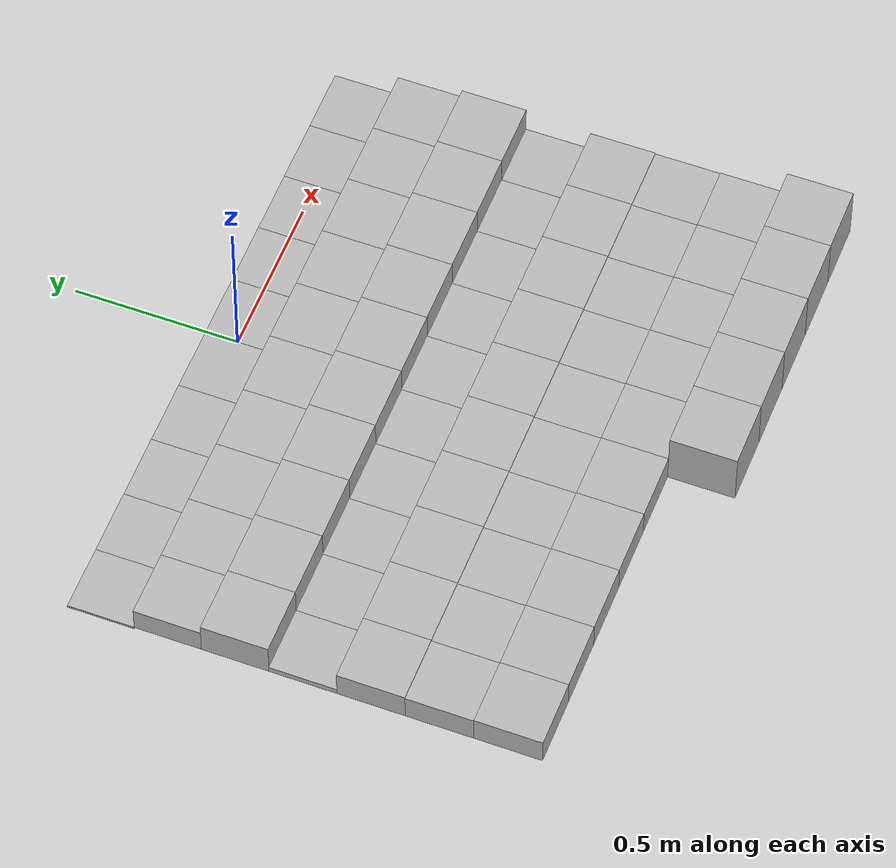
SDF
<sdf version="1.6">
 <model name="Terrain">
  <static>true</static>
  <link name="box_0_0">
   <pose>-0.9 0.0 -0.00376873124475 0 0 0</pose>
   <inertial>
    <mass>1.0</mass>
    <inertia><ixx>0.0</ixx><ixy>0.0</ixy><ixz>0.0</ixz><iyy>0.0</iyy><iyz>0.0</iyz><izz>0.0</izz></inertia>
   </inertial>
   <collision name="collision"><geometry><box><size>0.2 0.2 -0.0075374624895</size></box></geometry></collision>
   <visual name="visual"><geometry><box><size>0.2 0.2 -0.0075374624895</size></box></geometry></visual>
  </link>
  <link name="box_0_1">
   <pose>-0.7 0.0 -0.00376873124475 0 0 0</pose>
   <inertial>
    <mass>1.0</mass>
    <inertia><ixx>0.0</ixx><ixy>0.0</ixy><ixz>0.0</ixz><iyy>0.0</iyy><iyz>0.0</iyz><izz>0.0</izz></inertia>
   </inertial>
   <collision name="collision"><geometry><box><size>0.2 0.2 -0.0075374624895</size></box></geometry></collision>
   <visual name="visual"><geometry><box><size>0.2 0.2 -0.0075374624895</size></box></geometry></visual>
  </link>
  <link name="box_0_2">
   <pose>-0.5 0.0 -0.00376873124475 0 0 0</pose>
   <inertial>
    <mass>1.0</mass>
    <inertia><ixx>0.0</ixx><ixy>0.0</ixy><ixz>0.0</ixz><iyy>0.0</iyy><iyz>0.0</iyz><izz>0.0</izz></inertia>
   </inertial>
   <collision name="collision"><geometry><box><size>0.2 0.2 -0.0075374624895</size></box></geometry></collision>
   <visual name="visual"><geometry><box><size>0.2 0.2 -0.0075374624895</size></box></geometry></visual>
  </link>
  <link name="box_0_3">
   <pose>-0.3 0.0 -0.00376873124475 0 0 0</pose>
   <inertial>
    <mass>1.0</mass>
    <inertia><ixx>0.0</ixx><ixy>0.0</ixy><ixz>0.0</ixz><iyy>0.0</iyy><iyz>0.0</iyz><izz>0.0</izz></inertia>
   </inertial>
   <collision name="collision"><geometry><box><size>0.2 0.2 -0.0075374624895</size></box></geometry></collision>
   <visual name="visual"><geometry><box><size>0.2 0.2 -0.0075374624895</size></box></geometry></visual>
  </link>
  <link name="box_0_4">
   <pose>-0.1 0.0 -0.00376873124475 0 0 0</pose>
   <inertial>
    <mass>1.0</mass>
    <inertia><ixx>0.0</ixx><ixy>0.0</ixy><ixz>0.0</ixz><iyy>0.0</iyy><iyz>0.0</iyz><izz>0.0</izz></inertia>
   </inertial>
   <collision name="collision"><geometry><box><size>0.2 0.2 -0.0075374624895</size></box></geometry></collision>
   <visual name="visual"><geometry><box><size>0.2 0.2 -0.0075374624895</size></box></geometry></visual>
  </link>
  <link name="box_0_5">
   <pose>0.1 0.0 -0.00376873124475 0 0 0</pose>
   <inertial>
    <mass>1.0</mass>
    <inertia><ixx>0.0</ixx><ixy>0.0</ixy><ixz>0.0</ixz><iyy>0.0</iyy><iyz>0.0</iyz><izz>0.0</izz></inertia>
   </inertial>
   <collision name="collision"><geometry><box><size>0.2 0.2 -0.0075374624895</size></box></geometry></collision>
   <visual name="visual"><geometry><box><size>0.2 0.2 -0.0075374624895</size></box></geometry></visual>
  </link>
  <link name="box_0_6">
   <pose>0.3 0.0 -0.00376873124475 0 0 0</pose>
   <inertial>
    <mass>1.0</mass>
    <inertia><ixx>0.0</ixx><ixy>0.0</ixy><ixz>0.0</ixz><iyy>0.0</iyy><iyz>0.0</iyz><izz>0.0</izz></inertia>
   </inertial>
   <collision name="collision"><geometry><box><size>0.2 0.2 -0.0075374624895</size></box></geometry></collision>
   <visual name="visual"><geometry><box><size>0.2 0.2 -0.0075374624895</size></box></geometry></visual>
  </link>
  <link name="box_0_7">
   <pose>0.5 0.0 -0.00376873124475 0 0 0</pose>
   <inertial>
    <mass>1.0</mass>
    <inertia><ixx>0.0</ixx><ixy>0.0</ixy><ixz>0.0</ixz><iyy>0.0</iyy><iyz>0.0</iyz><izz>0.0</izz></inertia>
   </inertial>
   <collision name="collision"><geometry><box><size>0.2 0.2 -0.0075374624895</size></box></geometry></collision>
   <visual name="visual"><geometry><box><size>0.2 0.2 -0.0075374624895</size></box></geometry></visual>
  </link>
  <link name="box_0_8">
   <pose>0.7 0.0 -0.00376873124475 0 0 0</pose>
   <inertial>
    <mass>1.0</mass>
    <inertia><ixx>0.0</ixx><ixy>0.0</ixy><ixz>0.0</ixz><iyy>0.0</iyy><iyz>0.0</iyz><izz>0.0</izz></inertia>
   </inertial>
   <collision name="collision"><geometry><box><size>0.2 0.2 -0.0075374624895</size></box></geometry></collision>
   <visual name="visual"><geometry><box><size>0.2 0.2 -0.0075374624895</size></box></geometry></visual>
  </link>
  <link name="box_0_9">
   <pose>0.9 0.0 -0.00376873124475 0 0 0</pose>
   <inertial>
    <mass>1.0</mass>
    <inertia><ixx>0.0</ixx><ixy>0.0</ixy><ixz>0.0</ixz><iyy>0.0</iyy><iyz>0.0</iyz><izz>0.0</izz></inertia>
   </inertial>
   <collision name="collision"><geometry><box><size>0.2 0.2 -0.0075374624895</size></box></geometry></collision>
   <visual name="visual"><geometry><box><size>0.2 0.2 -0.0075374624895</size></box></geometry></visual>
  </link>
  <link name="box_1_0">
   <pose>-0.9 -0.2 0.040248962312 0 0 0</pose>
   <inertial>
    <mass>1.0</mass>
    <inertia><ixx>0.0</ixx><ixy>0.0</ixy><ixz>0.0</ixz><iyy>0.0</iyy><iyz>0.0</iyz><izz>0.0</izz></inertia>
   </inertial>
   <collision name="collision"><geometry><box><size>0.2 0.2 0.080497924624</size></box></geometry></collision>
   <visual name="visual"><geometry><box><size>0.2 0.2 0.080497924624</size></box></geometry></visual>
  </link>
  <link name="box_1_1">
   <pose>-0.7 -0.2 0.040248962312 0 0 0</pose>
   <inertial>
    <mass>1.0</mass>
    <inertia><ixx>0.0</ixx><ixy>0.0</ixy><ixz>0.0</ixz><iyy>0.0</iyy><iyz>0.0</iyz><izz>0.0</izz></inertia>
   </inertial>
   <collision name="collision"><geometry><box><size>0.2 0.2 0.080497924624</size></box></geometry></collision>
   <visual name="visual"><geometry><box><size>0.2 0.2 0.080497924624</size></box></geometry></visual>
  </link>
  <link name="box_1_2">
   <pose>-0.5 -0.2 0.040248962312 0 0 0</pose>
   <inertial>
    <mass>1.0</mass>
    <inertia><ixx>0.0</ixx><ixy>0.0</ixy><ixz>0.0</ixz><iyy>0.0</iyy><iyz>0.0</iyz><izz>0.0</izz></inertia>
   </inertial>
   <collision name="collision"><geometry><box><size>0.2 0.2 0.080497924624</size></box></geometry></collision>
   <visual name="visual"><geometry><box><size>0.2 0.2 0.080497924624</size></box></geometry></visual>
  </link>
  <link name="box_1_3">
   <pose>-0.3 -0.2 0.040248962312 0 0 0</pose>
   <inertial>
    <mass>1.0</mass>
    <inertia><ixx>0.0</ixx><ixy>0.0</ixy><ixz>0.0</ixz><iyy>0.0</iyy><iyz>0.0</iyz><izz>0.0</izz></inertia>
   </inertial>
   <collision name="collision"><geometry><box><size>0.2 0.2 0.080497924624</size></box></geometry></collision>
   <visual name="visual"><geometry><box><size>0.2 0.2 0.080497924624</size></box></geometry></visual>
  </link>
  <link name="box_1_4">
   <pose>-0.1 -0.2 0.040248962312 0 0 0</pose>
   <inertial>
    <mass>1.0</mass>
    <inertia><ixx>0.0</ixx><ixy>0.0</ixy><ixz>0.0</ixz><iyy>0.0</iyy><iyz>0.0</iyz><izz>0.0</izz></inertia>
   </inertial>
   <collision name="collision"><geometry><box><size>0.2 0.2 0.080497924624</size></box></geometry></collision>
   <visual name="visual"><geometry><box><size>0.2 0.2 0.080497924624</size></box></geometry></visual>
  </link>
  <link name="box_1_5">
   <pose>0.1 -0.2 0.040248962312 0 0 0</pose>
   <inertial>
    <mass>1.0</mass>
    <inertia><ixx>0.0</ixx><ixy>0.0</ixy><ixz>0.0</ixz><iyy>0.0</iyy><iyz>0.0</iyz><izz>0.0</izz></inertia>
   </inertial>
   <collision name="collision"><geometry><box><size>0.2 0.2 0.080497924624</size></box></geometry></collision>
   <visual name="visual"><geometry><box><size>0.2 0.2 0.080497924624</size></box></geometry></visual>
  </link>
  <link name="box_1_6">
   <pose>0.3 -0.2 0.040248962312 0 0 0</pose>
   <inertial>
    <mass>1.0</mass>
    <inertia><ixx>0.0</ixx><ixy>0.0</ixy><ixz>0.0</ixz><iyy>0.0</iyy><iyz>0.0</iyz><izz>0.0</izz></inertia>
   </inertial>
   <collision name="collision"><geometry><box><size>0.2 0.2 0.080497924624</size></box></geometry></collision>
   <visual name="visual"><geometry><box><size>0.2 0.2 0.080497924624</size></box></geometry></visual>
  </link>
  <link name="box_1_7">
   <pose>0.5 -0.2 0.040248962312 0 0 0</pose>
   <inertial>
    <mass>1.0</mass>
    <inertia><ixx>0.0</ixx><ixy>0.0</ixy><ixz>0.0</ixz><iyy>0.0</iyy><iyz>0.0</iyz><izz>0.0</izz></inertia>
   </inertial>
   <collision name="collision"><geometry><box><size>0.2 0.2 0.080497924624</size></box></geometry></collision>
   <visual name="visual"><geometry><box><size>0.2 0.2 0.080497924624</size></box></geometry></visual>
  </link>
  <link name="box_1_8">
   <pose>0.7 -0.2 0.040248962312 0 0 0</pose>
   <inertial>
    <mass>1.0</mass>
    <inertia><ixx>0.0</ixx><ixy>0.0</ixy><ixz>0.0</ixz><iyy>0.0</iyy><iyz>0.0</iyz><izz>0.0</izz></inertia>
   </inertial>
   <collision name="collision"><geometry><box><size>0.2 0.2 0.080497924624</size></box></geometry></collision>
   <visual name="visual"><geometry><box><size>0.2 0.2 0.080497924624</size></box></geometry></visual>
  </link>
  <link name="box_1_9">
   <pose>0.9 -0.2 0.040248962312 0 0 0</pose>
   <inertial>
    <mass>1.0</mass>
    <inertia><ixx>0.0</ixx><ixy>0.0</ixy><ixz>0.0</ixz><iyy>0.0</iyy><iyz>0.0</iyz><izz>0.0</izz></inertia>
   </inertial>
   <collision name="collision"><geometry><box><size>0.2 0.2 0.080497924624</size></box></geometry></collision>
   <visual name="visual"><geometry><box><size>0.2 0.2 0.080497924624</size></box></geometry></visual>
  </link>
  <link name="box_2_0">
   <pose>-0.9 -0.4 0.0546225197185 0 0 0</pose>
   <inertial>
    <mass>1.0</mass>
    <inertia><ixx>0.0</ixx><ixy>0.0</ixy><ixz>0.0</ixz><iyy>0.0</iyy><iyz>0.0</iyz><izz>0.0</izz></inertia>
   </inertial>
   <collision name="collision"><geometry><box><size>0.2 0.2 0.109245039437</size></box></geometry></collision>
   <visual name="visual"><geometry><box><size>0.2 0.2 0.109245039437</size></box></geometry></visual>
  </link>
  <link name="box_2_1">
   <pose>-0.7 -0.4 0.0546225197185 0 0 0</pose>
   <inertial>
    <mass>1.0</mass>
    <inertia><ixx>0.0</ixx><ixy>0.0</ixy><ixz>0.0</ixz><iyy>0.0</iyy><iyz>0.0</iyz><izz>0.0</izz></inertia>
   </inertial>
   <collision name="collision"><geometry><box><size>0.2 0.2 0.109245039437</size></box></geometry></collision>
   <visual name="visual"><geometry><box><size>0.2 0.2 0.109245039437</size></box></geometry></visual>
  </link>
  <link name="box_2_2">
   <pose>-0.5 -0.4 0.0546225197185 0 0 0</pose>
   <inertial>
    <mass>1.0</mass>
    <inertia><ixx>0.0</ixx><ixy>0.0</ixy><ixz>0.0</ixz><iyy>0.0</iyy><iyz>0.0</iyz><izz>0.0</izz></inertia>
   </inertial>
   <collision name="collision"><geometry><box><size>0.2 0.2 0.109245039437</size></box></geometry></collision>
   <visual name="visual"><geometry><box><size>0.2 0.2 0.109245039437</size></box></geometry></visual>
  </link>
  <link name="box_2_3">
   <pose>-0.3 -0.4 0.0546225197185 0 0 0</pose>
   <inertial>
    <mass>1.0</mass>
    <inertia><ixx>0.0</ixx><ixy>0.0</ixy><ixz>0.0</ixz><iyy>0.0</iyy><iyz>0.0</iyz><izz>0.0</izz></inertia>
   </inertial>
   <collision name="collision"><geometry><box><size>0.2 0.2 0.109245039437</size></box></geometry></collision>
   <visual name="visual"><geometry><box><size>0.2 0.2 0.109245039437</size></box></geometry></visual>
  </link>
  <link name="box_2_4">
   <pose>-0.1 -0.4 0.0546225197185 0 0 0</pose>
   <inertial>
    <mass>1.0</mass>
    <inertia><ixx>0.0</ixx><ixy>0.0</ixy><ixz>0.0</ixz><iyy>0.0</iyy><iyz>0.0</iyz><izz>0.0</izz></inertia>
   </inertial>
   <collision name="collision"><geometry><box><size>0.2 0.2 0.109245039437</size></box></geometry></collision>
   <visual name="visual"><geometry><box><size>0.2 0.2 0.109245039437</size></box></geometry></visual>
  </link>
  <link name="box_2_5">
   <pose>0.1 -0.4 0.0546225197185 0 0 0</pose>
   <inertial>
    <mass>1.0</mass>
    <inertia><ixx>0.0</ixx><ixy>0.0</ixy><ixz>0.0</ixz><iyy>0.0</iyy><iyz>0.0</iyz><izz>0.0</izz></inertia>
   </inertial>
   <collision name="collision"><geometry><box><size>0.2 0.2 0.109245039437</size></box></geometry></collision>
   <visual name="visual"><geometry><box><size>0.2 0.2 0.109245039437</size></box></geometry></visual>
  </link>
  <link name="box_2_6">
   <pose>0.3 -0.4 0.0546225197185 0 0 0</pose>
   <inertial>
    <mass>1.0</mass>
    <inertia><ixx>0.0</ixx><ixy>0.0</ixy><ixz>0.0</ixz><iyy>0.0</iyy><iyz>0.0</iyz><izz>0.0</izz></inertia>
   </inertial>
   <collision name="collision"><geometry><box><size>0.2 0.2 0.109245039437</size></box></geometry></collision>
   <visual name="visual"><geometry><box><size>0.2 0.2 0.109245039437</size></box></geometry></visual>
  </link>
  <link name="box_2_7">
   <pose>0.5 -0.4 0.0546225197185 0 0 0</pose>
   <inertial>
    <mass>1.0</mass>
    <inertia><ixx>0.0</ixx><ixy>0.0</ixy><ixz>0.0</ixz><iyy>0.0</iyy><iyz>0.0</iyz><izz>0.0</izz></inertia>
   </inertial>
   <collision name="collision"><geometry><box><size>0.2 0.2 0.109245039437</size></box></geometry></collision>
   <visual name="visual"><geometry><box><size>0.2 0.2 0.109245039437</size></box></geometry></visual>
  </link>
  <link name="box_2_8">
   <pose>0.7 -0.4 0.0546225197185 0 0 0</pose>
   <inertial>
    <mass>1.0</mass>
    <inertia><ixx>0.0</ixx><ixy>0.0</ixy><ixz>0.0</ixz><iyy>0.0</iyy><iyz>0.0</iyz><izz>0.0</izz></inertia>
   </inertial>
   <collision name="collision"><geometry><box><size>0.2 0.2 0.109245039437</size></box></geometry></collision>
   <visual name="visual"><geometry><box><size>0.2 0.2 0.109245039437</size></box></geometry></visual>
  </link>
  <link name="box_2_9">
   <pose>0.9 -0.4 0.0546225197185 0 0 0</pose>
   <inertial>
    <mass>1.0</mass>
    <inertia><ixx>0.0</ixx><ixy>0.0</ixy><ixz>0.0</ixz><iyy>0.0</iyy><iyz>0.0</iyz><izz>0.0</izz></inertia>
   </inertial>
   <collision name="collision"><geometry><box><size>0.2 0.2 0.109245039437</size></box></geometry></collision>
   <visual name="visual"><geometry><box><size>0.2 0.2 0.109245039437</size></box></geometry></visual>
  </link>
  <link name="box_3_0">
   <pose>-0.9 -0.6 0.00967694955754 0 0 0</pose>
   <inertial>
    <mass>1.0</mass>
    <inertia><ixx>0.0</ixx><ixy>0.0</ixy><ixz>0.0</ixz><iyy>0.0</iyy><iyz>0.0</iyz><izz>0.0</izz></inertia>
   </inertial>
   <collision name="collision"><geometry><box><size>0.2 0.2 0.0193538991151</size></box></geometry></collision>
   <visual name="visual"><geometry><box><size>0.2 0.2 0.0193538991151</size></box></geometry></visual>
  </link>
  <link name="box_3_1">
   <pose>-0.7 -0.6 0.00967694955754 0 0 0</pose>
   <inertial>
    <mass>1.0</mass>
    <inertia><ixx>0.0</ixx><ixy>0.0</ixy><ixz>0.0</ixz><iyy>0.0</iyy><iyz>0.0</iyz><izz>0.0</izz></inertia>
   </inertial>
   <collision name="collision"><geometry><box><size>0.2 0.2 0.0193538991151</size></box></geometry></collision>
   <visual name="visual"><geometry><box><size>0.2 0.2 0.0193538991151</size></box></geometry></visual>
  </link>
  <link name="box_3_2">
   <pose>-0.5 -0.6 0.00967694955754 0 0 0</pose>
   <inertial>
    <mass>1.0</mass>
    <inertia><ixx>0.0</ixx><ixy>0.0</ixy><ixz>0.0</ixz><iyy>0.0</iyy><iyz>0.0</iyz><izz>0.0</izz></inertia>
   </inertial>
   <collision name="collision"><geometry><box><size>0.2 0.2 0.0193538991151</size></box></geometry></collision>
   <visual name="visual"><geometry><box><size>0.2 0.2 0.0193538991151</size></box></geometry></visual>
  </link>
  <link name="box_3_3">
   <pose>-0.3 -0.6 0.00967694955754 0 0 0</pose>
   <inertial>
    <mass>1.0</mass>
    <inertia><ixx>0.0</ixx><ixy>0.0</ixy><ixz>0.0</ixz><iyy>0.0</iyy><iyz>0.0</iyz><izz>0.0</izz></inertia>
   </inertial>
   <collision name="collision"><geometry><box><size>0.2 0.2 0.0193538991151</size></box></geometry></collision>
   <visual name="visual"><geometry><box><size>0.2 0.2 0.0193538991151</size></box></geometry></visual>
  </link>
  <link name="box_3_4">
   <pose>-0.1 -0.6 0.00967694955754 0 0 0</pose>
   <inertial>
    <mass>1.0</mass>
    <inertia><ixx>0.0</ixx><ixy>0.0</ixy><ixz>0.0</ixz><iyy>0.0</iyy><iyz>0.0</iyz><izz>0.0</izz></inertia>
   </inertial>
   <collision name="collision"><geometry><box><size>0.2 0.2 0.0193538991151</size></box></geometry></collision>
   <visual name="visual"><geometry><box><size>0.2 0.2 0.0193538991151</size></box></geometry></visual>
  </link>
  <link name="box_3_5">
   <pose>0.1 -0.6 0.00967694955754 0 0 0</pose>
   <inertial>
    <mass>1.0</mass>
    <inertia><ixx>0.0</ixx><ixy>0.0</ixy><ixz>0.0</ixz><iyy>0.0</iyy><iyz>0.0</iyz><izz>0.0</izz></inertia>
   </inertial>
   <collision name="collision"><geometry><box><size>0.2 0.2 0.0193538991151</size></box></geometry></collision>
   <visual name="visual"><geometry><box><size>0.2 0.2 0.0193538991151</size></box></geometry></visual>
  </link>
  <link name="box_3_6">
   <pose>0.3 -0.6 0.00967694955754 0 0 0</pose>
   <inertial>
    <mass>1.0</mass>
    <inertia><ixx>0.0</ixx><ixy>0.0</ixy><ixz>0.0</ixz><iyy>0.0</iyy><iyz>0.0</iyz><izz>0.0</izz></inertia>
   </inertial>
   <collision name="collision"><geometry><box><size>0.2 0.2 0.0193538991151</size></box></geometry></collision>
   <visual name="visual"><geometry><box><size>0.2 0.2 0.0193538991151</size></box></geometry></visual>
  </link>
  <link name="box_3_7">
   <pose>0.5 -0.6 0.00967694955754 0 0 0</pose>
   <inertial>
    <mass>1.0</mass>
    <inertia><ixx>0.0</ixx><ixy>0.0</ixy><ixz>0.0</ixz><iyy>0.0</iyy><iyz>0.0</iyz><izz>0.0</izz></inertia>
   </inertial>
   <collision name="collision"><geometry><box><size>0.2 0.2 0.0193538991151</size></box></geometry></collision>
   <visual name="visual"><geometry><box><size>0.2 0.2 0.0193538991151</size></box></geometry></visual>
  </link>
  <link name="box_3_8">
   <pose>0.7 -0.6 0.00967694955754 0 0 0</pose>
   <inertial>
    <mass>1.0</mass>
    <inertia><ixx>0.0</ixx><ixy>0.0</ixy><ixz>0.0</ixz><iyy>0.0</iyy><iyz>0.0</iyz><izz>0.0</izz></inertia>
   </inertial>
   <collision name="collision"><geometry><box><size>0.2 0.2 0.0193538991151</size></box></geometry></collision>
   <visual name="visual"><geometry><box><size>0.2 0.2 0.0193538991151</size></box></geometry></visual>
  </link>
  <link name="box_3_9">
   <pose>0.9 -0.6 0.00967694955754 0 0 0</pose>
   <inertial>
    <mass>1.0</mass>
    <inertia><ixx>0.0</ixx><ixy>0.0</ixy><ixz>0.0</ixz><iyy>0.0</iyy><iyz>0.0</iyz><izz>0.0</izz></inertia>
   </inertial>
   <collision name="collision"><geometry><box><size>0.2 0.2 0.0193538991151</size></box></geometry></collision>
   <visual name="visual"><geometry><box><size>0.2 0.2 0.0193538991151</size></box></geometry></visual>
  </link>
  <link name="box_4_0">
   <pose>-0.9 -0.8 0.0453928299015 0 0 0</pose>
   <inertial>
    <mass>1.0</mass>
    <inertia><ixx>0.0</ixx><ixy>0.0</ixy><ixz>0.0</ixz><iyy>0.0</iyy><iyz>0.0</iyz><izz>0.0</izz></inertia>
   </inertial>
   <collision name="collision"><geometry><box><size>0.2 0.2 0.0907856598031</size></box></geometry></collision>
   <visual name="visual"><geometry><box><size>0.2 0.2 0.0907856598031</size></box></geometry></visual>
  </link>
  <link name="box_4_1">
   <pose>-0.7 -0.8 0.0453928299015 0 0 0</pose>
   <inertial>
    <mass>1.0</mass>
    <inertia><ixx>0.0</ixx><ixy>0.0</ixy><ixz>0.0</ixz><iyy>0.0</iyy><iyz>0.0</iyz><izz>0.0</izz></inertia>
   </inertial>
   <collision name="collision"><geometry><box><size>0.2 0.2 0.0907856598031</size></box></geometry></collision>
   <visual name="visual"><geometry><box><size>0.2 0.2 0.0907856598031</size></box></geometry></visual>
  </link>
  <link name="box_4_2">
   <pose>-0.5 -0.8 0.0453928299015 0 0 0</pose>
   <inertial>
    <mass>1.0</mass>
    <inertia><ixx>0.0</ixx><ixy>0.0</ixy><ixz>0.0</ixz><iyy>0.0</iyy><iyz>0.0</iyz><izz>0.0</izz></inertia>
   </inertial>
   <collision name="collision"><geometry><box><size>0.2 0.2 0.0907856598031</size></box></geometry></collision>
   <visual name="visual"><geometry><box><size>0.2 0.2 0.0907856598031</size></box></geometry></visual>
  </link>
  <link name="box_4_3">
   <pose>-0.3 -0.8 0.0453928299015 0 0 0</pose>
   <inertial>
    <mass>1.0</mass>
    <inertia><ixx>0.0</ixx><ixy>0.0</ixy><ixz>0.0</ixz><iyy>0.0</iyy><iyz>0.0</iyz><izz>0.0</izz></inertia>
   </inertial>
   <collision name="collision"><geometry><box><size>0.2 0.2 0.0907856598031</size></box></geometry></collision>
   <visual name="visual"><geometry><box><size>0.2 0.2 0.0907856598031</size></box></geometry></visual>
  </link>
  <link name="box_4_4">
   <pose>-0.1 -0.8 0.0453928299015 0 0 0</pose>
   <inertial>
    <mass>1.0</mass>
    <inertia><ixx>0.0</ixx><ixy>0.0</ixy><ixz>0.0</ixz><iyy>0.0</iyy><iyz>0.0</iyz><izz>0.0</izz></inertia>
   </inertial>
   <collision name="collision"><geometry><box><size>0.2 0.2 0.0907856598031</size></box></geometry></collision>
   <visual name="visual"><geometry><box><size>0.2 0.2 0.0907856598031</size></box></geometry></visual>
  </link>
  <link name="box_4_5">
   <pose>0.1 -0.8 0.0453928299015 0 0 0</pose>
   <inertial>
    <mass>1.0</mass>
    <inertia><ixx>0.0</ixx><ixy>0.0</ixy><ixz>0.0</ixz><iyy>0.0</iyy><iyz>0.0</iyz><izz>0.0</izz></inertia>
   </inertial>
   <collision name="collision"><geometry><box><size>0.2 0.2 0.0907856598031</size></box></geometry></collision>
   <visual name="visual"><geometry><box><size>0.2 0.2 0.0907856598031</size></box></geometry></visual>
  </link>
  <link name="box_4_6">
   <pose>0.3 -0.8 0.0453928299015 0 0 0</pose>
   <inertial>
    <mass>1.0</mass>
    <inertia><ixx>0.0</ixx><ixy>0.0</ixy><ixz>0.0</ixz><iyy>0.0</iyy><iyz>0.0</iyz><izz>0.0</izz></inertia>
   </inertial>
   <collision name="collision"><geometry><box><size>0.2 0.2 0.0907856598031</size></box></geometry></collision>
   <visual name="visual"><geometry><box><size>0.2 0.2 0.0907856598031</size></box></geometry></visual>
  </link>
  <link name="box_4_7">
   <pose>0.5 -0.8 0.0453928299015 0 0 0</pose>
   <inertial>
    <mass>1.0</mass>
    <inertia><ixx>0.0</ixx><ixy>0.0</ixy><ixz>0.0</ixz><iyy>0.0</iyy><iyz>0.0</iyz><izz>0.0</izz></inertia>
   </inertial>
   <collision name="collision"><geometry><box><size>0.2 0.2 0.0907856598031</size></box></geometry></collision>
   <visual name="visual"><geometry><box><size>0.2 0.2 0.0907856598031</size></box></geometry></visual>
  </link>
  <link name="box_4_8">
   <pose>0.7 -0.8 0.0453928299015 0 0 0</pose>
   <inertial>
    <mass>1.0</mass>
    <inertia><ixx>0.0</ixx><ixy>0.0</ixy><ixz>0.0</ixz><iyy>0.0</iyy><iyz>0.0</iyz><izz>0.0</izz></inertia>
   </inertial>
   <collision name="collision"><geometry><box><size>0.2 0.2 0.0907856598031</size></box></geometry></collision>
   <visual name="visual"><geometry><box><size>0.2 0.2 0.0907856598031</size></box></geometry></visual>
  </link>
  <link name="box_4_9">
   <pose>0.9 -0.8 0.0453928299015 0 0 0</pose>
   <inertial>
    <mass>1.0</mass>
    <inertia><ixx>0.0</ixx><ixy>0.0</ixy><ixz>0.0</ixz><iyy>0.0</iyy><iyz>0.0</iyz><izz>0.0</izz></inertia>
   </inertial>
   <collision name="collision"><geometry><box><size>0.2 0.2 0.0907856598031</size></box></geometry></collision>
   <visual name="visual"><geometry><box><size>0.2 0.2 0.0907856598031</size></box></geometry></visual>
  </link>
  <link name="box_5_0">
   <pose>-0.9 -1.0 0.0435243789429 0 0 0</pose>
   <inertial>
    <mass>1.0</mass>
    <inertia><ixx>0.0</ixx><ixy>0.0</ixy><ixz>0.0</ixz><iyy>0.0</iyy><iyz>0.0</iyz><izz>0.0</izz></inertia>
   </inertial>
   <collision name="collision"><geometry><box><size>0.2 0.2 0.0870487578859</size></box></geometry></collision>
   <visual name="visual"><geometry><box><size>0.2 0.2 0.0870487578859</size></box></geometry></visual>
  </link>
  <link name="box_5_1">
   <pose>-0.7 -1.0 0.0435243789429 0 0 0</pose>
   <inertial>
    <mass>1.0</mass>
    <inertia><ixx>0.0</ixx><ixy>0.0</ixy><ixz>0.0</ixz><iyy>0.0</iyy><iyz>0.0</iyz><izz>0.0</izz></inertia>
   </inertial>
   <collision name="collision"><geometry><box><size>0.2 0.2 0.0870487578859</size></box></geometry></collision>
   <visual name="visual"><geometry><box><size>0.2 0.2 0.0870487578859</size></box></geometry></visual>
  </link>
  <link name="box_5_2">
   <pose>-0.5 -1.0 0.0435243789429 0 0 0</pose>
   <inertial>
    <mass>1.0</mass>
    <inertia><ixx>0.0</ixx><ixy>0.0</ixy><ixz>0.0</ixz><iyy>0.0</iyy><iyz>0.0</iyz><izz>0.0</izz></inertia>
   </inertial>
   <collision name="collision"><geometry><box><size>0.2 0.2 0.0870487578859</size></box></geometry></collision>
   <visual name="visual"><geometry><box><size>0.2 0.2 0.0870487578859</size></box></geometry></visual>
  </link>
  <link name="box_5_3">
   <pose>-0.3 -1.0 0.0435243789429 0 0 0</pose>
   <inertial>
    <mass>1.0</mass>
    <inertia><ixx>0.0</ixx><ixy>0.0</ixy><ixz>0.0</ixz><iyy>0.0</iyy><iyz>0.0</iyz><izz>0.0</izz></inertia>
   </inertial>
   <collision name="collision"><geometry><box><size>0.2 0.2 0.0870487578859</size></box></geometry></collision>
   <visual name="visual"><geometry><box><size>0.2 0.2 0.0870487578859</size></box></geometry></visual>
  </link>
  <link name="box_5_4">
   <pose>-0.1 -1.0 0.0435243789429 0 0 0</pose>
   <inertial>
    <mass>1.0</mass>
    <inertia><ixx>0.0</ixx><ixy>0.0</ixy><ixz>0.0</ixz><iyy>0.0</iyy><iyz>0.0</iyz><izz>0.0</izz></inertia>
   </inertial>
   <collision name="collision"><geometry><box><size>0.2 0.2 0.0870487578859</size></box></geometry></collision>
   <visual name="visual"><geometry><box><size>0.2 0.2 0.0870487578859</size></box></geometry></visual>
  </link>
  <link name="box_5_5">
   <pose>0.1 -1.0 0.0435243789429 0 0 0</pose>
   <inertial>
    <mass>1.0</mass>
    <inertia><ixx>0.0</ixx><ixy>0.0</ixy><ixz>0.0</ixz><iyy>0.0</iyy><iyz>0.0</iyz><izz>0.0</izz></inertia>
   </inertial>
   <collision name="collision"><geometry><box><size>0.2 0.2 0.0870487578859</size></box></geometry></collision>
   <visual name="visual"><geometry><box><size>0.2 0.2 0.0870487578859</size></box></geometry></visual>
  </link>
  <link name="box_5_6">
   <pose>0.3 -1.0 0.0435243789429 0 0 0</pose>
   <inertial>
    <mass>1.0</mass>
    <inertia><ixx>0.0</ixx><ixy>0.0</ixy><ixz>0.0</ixz><iyy>0.0</iyy><iyz>0.0</iyz><izz>0.0</izz></inertia>
   </inertial>
   <collision name="collision"><geometry><box><size>0.2 0.2 0.0870487578859</size></box></geometry></collision>
   <visual name="visual"><geometry><box><size>0.2 0.2 0.0870487578859</size></box></geometry></visual>
  </link>
  <link name="box_5_7">
   <pose>0.5 -1.0 0.0435243789429 0 0 0</pose>
   <inertial>
    <mass>1.0</mass>
    <inertia><ixx>0.0</ixx><ixy>0.0</ixy><ixz>0.0</ixz><iyy>0.0</iyy><iyz>0.0</iyz><izz>0.0</izz></inertia>
   </inertial>
   <collision name="collision"><geometry><box><size>0.2 0.2 0.0870487578859</size></box></geometry></collision>
   <visual name="visual"><geometry><box><size>0.2 0.2 0.0870487578859</size></box></geometry></visual>
  </link>
  <link name="box_5_8">
   <pose>0.7 -1.0 0.0435243789429 0 0 0</pose>
   <inertial>
    <mass>1.0</mass>
    <inertia><ixx>0.0</ixx><ixy>0.0</ixy><ixz>0.0</ixz><iyy>0.0</iyy><iyz>0.0</iyz><izz>0.0</izz></inertia>
   </inertial>
   <collision name="collision"><geometry><box><size>0.2 0.2 0.0870487578859</size></box></geometry></collision>
   <visual name="visual"><geometry><box><size>0.2 0.2 0.0870487578859</size></box></geometry></visual>
  </link>
  <link name="box_5_9">
   <pose>0.9 -1.0 0.0435243789429 0 0 0</pose>
   <inertial>
    <mass>1.0</mass>
    <inertia><ixx>0.0</ixx><ixy>0.0</ixy><ixz>0.0</ixz><iyy>0.0</iyy><iyz>0.0</iyz><izz>0.0</izz></inertia>
   </inertial>
   <collision name="collision"><geometry><box><size>0.2 0.2 0.0870487578859</size></box></geometry></collision>
   <visual name="visual"><geometry><box><size>0.2 0.2 0.0870487578859</size></box></geometry></visual>
  </link>
  <link name="box_6_0">
   <pose>-0.9 -1.2 0.0447203483397 0 0 0</pose>
   <inertial>
    <mass>1.0</mass>
    <inertia><ixx>0.0</ixx><ixy>0.0</ixy><ixz>0.0</ixz><iyy>0.0</iyy><iyz>0.0</iyz><izz>0.0</izz></inertia>
   </inertial>
   <collision name="collision"><geometry><box><size>0.2 0.2 0.0894406966794</size></box></geometry></collision>
   <visual name="visual"><geometry><box><size>0.2 0.2 0.0894406966794</size></box></geometry></visual>
  </link>
  <link name="box_6_1">
   <pose>-0.7 -1.2 0.0447203483397 0 0 0</pose>
   <inertial>
    <mass>1.0</mass>
    <inertia><ixx>0.0</ixx><ixy>0.0</ixy><ixz>0.0</ixz><iyy>0.0</iyy><iyz>0.0</iyz><izz>0.0</izz></inertia>
   </inertial>
   <collision name="collision"><geometry><box><size>0.2 0.2 0.0894406966794</size></box></geometry></collision>
   <visual name="visual"><geometry><box><size>0.2 0.2 0.0894406966794</size></box></geometry></visual>
  </link>
  <link name="box_6_2">
   <pose>-0.5 -1.2 0.0447203483397 0 0 0</pose>
   <inertial>
    <mass>1.0</mass>
    <inertia><ixx>0.0</ixx><ixy>0.0</ixy><ixz>0.0</ixz><iyy>0.0</iyy><iyz>0.0</iyz><izz>0.0</izz></inertia>
   </inertial>
   <collision name="collision"><geometry><box><size>0.2 0.2 0.0894406966794</size></box></geometry></collision>
   <visual name="visual"><geometry><box><size>0.2 0.2 0.0894406966794</size></box></geometry></visual>
  </link>
  <link name="box_6_3">
   <pose>-0.3 -1.2 0.0447203483397 0 0 0</pose>
   <inertial>
    <mass>1.0</mass>
    <inertia><ixx>0.0</ixx><ixy>0.0</ixy><ixz>0.0</ixz><iyy>0.0</iyy><iyz>0.0</iyz><izz>0.0</izz></inertia>
   </inertial>
   <collision name="collision"><geometry><box><size>0.2 0.2 0.0894406966794</size></box></geometry></collision>
   <visual name="visual"><geometry><box><size>0.2 0.2 0.0894406966794</size></box></geometry></visual>
  </link>
  <link name="box_6_4">
   <pose>-0.1 -1.2 0.0447203483397 0 0 0</pose>
   <inertial>
    <mass>1.0</mass>
    <inertia><ixx>0.0</ixx><ixy>0.0</ixy><ixz>0.0</ixz><iyy>0.0</iyy><iyz>0.0</iyz><izz>0.0</izz></inertia>
   </inertial>
   <collision name="collision"><geometry><box><size>0.2 0.2 0.0894406966794</size></box></geometry></collision>
   <visual name="visual"><geometry><box><size>0.2 0.2 0.0894406966794</size></box></geometry></visual>
  </link>
  <link name="box_6_5">
   <pose>0.1 -1.2 0.0447203483397 0 0 0</pose>
   <inertial>
    <mass>1.0</mass>
    <inertia><ixx>0.0</ixx><ixy>0.0</ixy><ixz>0.0</ixz><iyy>0.0</iyy><iyz>0.0</iyz><izz>0.0</izz></inertia>
   </inertial>
   <collision name="collision"><geometry><box><size>0.2 0.2 0.0894406966794</size></box></geometry></collision>
   <visual name="visual"><geometry><box><size>0.2 0.2 0.0894406966794</size></box></geometry></visual>
  </link>
  <link name="box_6_6">
   <pose>0.3 -1.2 0.0447203483397 0 0 0</pose>
   <inertial>
    <mass>1.0</mass>
    <inertia><ixx>0.0</ixx><ixy>0.0</ixy><ixz>0.0</ixz><iyy>0.0</iyy><iyz>0.0</iyz><izz>0.0</izz></inertia>
   </inertial>
   <collision name="collision"><geometry><box><size>0.2 0.2 0.0894406966794</size></box></geometry></collision>
   <visual name="visual"><geometry><box><size>0.2 0.2 0.0894406966794</size></box></geometry></visual>
  </link>
  <link name="box_6_7">
   <pose>0.5 -1.2 0.0447203483397 0 0 0</pose>
   <inertial>
    <mass>1.0</mass>
    <inertia><ixx>0.0</ixx><ixy>0.0</ixy><ixz>0.0</ixz><iyy>0.0</iyy><iyz>0.0</iyz><izz>0.0</izz></inertia>
   </inertial>
   <collision name="collision"><geometry><box><size>0.2 0.2 0.0894406966794</size></box></geometry></collision>
   <visual name="visual"><geometry><box><size>0.2 0.2 0.0894406966794</size></box></geometry></visual>
  </link>
  <link name="box_6_8">
   <pose>0.7 -1.2 0.0447203483397 0 0 0</pose>
   <inertial>
    <mass>1.0</mass>
    <inertia><ixx>0.0</ixx><ixy>0.0</ixy><ixz>0.0</ixz><iyy>0.0</iyy><iyz>0.0</iyz><izz>0.0</izz></inertia>
   </inertial>
   <collision name="collision"><geometry><box><size>0.2 0.2 0.0894406966794</size></box></geometry></collision>
   <visual name="visual"><geometry><box><size>0.2 0.2 0.0894406966794</size></box></geometry></visual>
  </link>
  <link name="box_6_9">
   <pose>0.9 -1.2 0.0447203483397 0 0 0</pose>
   <inertial>
    <mass>1.0</mass>
    <inertia><ixx>0.0</ixx><ixy>0.0</ixy><ixz>0.0</ixz><iyy>0.0</iyy><iyz>0.0</iyz><izz>0.0</izz></inertia>
   </inertial>
   <collision name="collision"><geometry><box><size>0.2 0.2 0.0894406966794</size></box></geometry></collision>
   <visual name="visual"><geometry><box><size>0.2 0.2 0.0894406966794</size></box></geometry></visual>
  </link>
  <link name="box_7_5">
   <pose>0.1 -1.4 0.0894675590558 0 0 0</pose>
   <inertial>
    <mass>1.0</mass>
    <inertia><ixx>0.0</ixx><ixy>0.0</ixy><ixz>0.0</ixz><iyy>0.0</iyy><iyz>0.0</iyz><izz>0.0</izz></inertia>
   </inertial>
   <collision name="collision"><geometry><box><size>0.2 0.2 0.178935118112</size></box></geometry></collision>
   <visual name="visual"><geometry><box><size>0.2 0.2 0.178935118112</size></box></geometry></visual>
  </link>
  <link name="box_7_6">
   <pose>0.3 -1.4 0.0894675590558 0 0 0</pose>
   <inertial>
    <mass>1.0</mass>
    <inertia><ixx>0.0</ixx><ixy>0.0</ixy><ixz>0.0</ixz><iyy>0.0</iyy><iyz>0.0</iyz><izz>0.0</izz></inertia>
   </inertial>
   <collision name="collision"><geometry><box><size>0.2 0.2 0.178935118112</size></box></geometry></collision>
   <visual name="visual"><geometry><box><size>0.2 0.2 0.178935118112</size></box></geometry></visual>
  </link>
  <link name="box_7_7">
   <pose>0.5 -1.4 0.0894675590558 0 0 0</pose>
   <inertial>
    <mass>1.0</mass>
    <inertia><ixx>0.0</ixx><ixy>0.0</ixy><ixz>0.0</ixz><iyy>0.0</iyy><iyz>0.0</iyz><izz>0.0</izz></inertia>
   </inertial>
   <collision name="collision"><geometry><box><size>0.2 0.2 0.178935118112</size></box></geometry></collision>
   <visual name="visual"><geometry><box><size>0.2 0.2 0.178935118112</size></box></geometry></visual>
  </link>
  <link name="box_7_8">
   <pose>0.7 -1.4 0.0894675590558 0 0 0</pose>
   <inertial>
    <mass>1.0</mass>
    <inertia><ixx>0.0</ixx><ixy>0.0</ixy><ixz>0.0</ixz><iyy>0.0</iyy><iyz>0.0</iyz><izz>0.0</izz></inertia>
   </inertial>
   <collision name="collision"><geometry><box><size>0.2 0.2 0.178935118112</size></box></geometry></collision>
   <visual name="visual"><geometry><box><size>0.2 0.2 0.178935118112</size></box></geometry></visual>
  </link>
  <link name="box_7_9">
   <pose>0.9 -1.4 0.0894675590558 0 0 0</pose>
   <inertial>
    <mass>1.0</mass>
    <inertia><ixx>0.0</ixx><ixy>0.0</ixy><ixz>0.0</ixz><iyy>0.0</iyy><iyz>0.0</iyz><izz>0.0</izz></inertia>
   </inertial>
   <collision name="collision"><geometry><box><size>0.2 0.2 0.178935118112</size></box></geometry></collision>
   <visual name="visual"><geometry><box><size>0.2 0.2 0.178935118112</size></box></geometry></visual>
  </link>
 </model>
</sdf>
